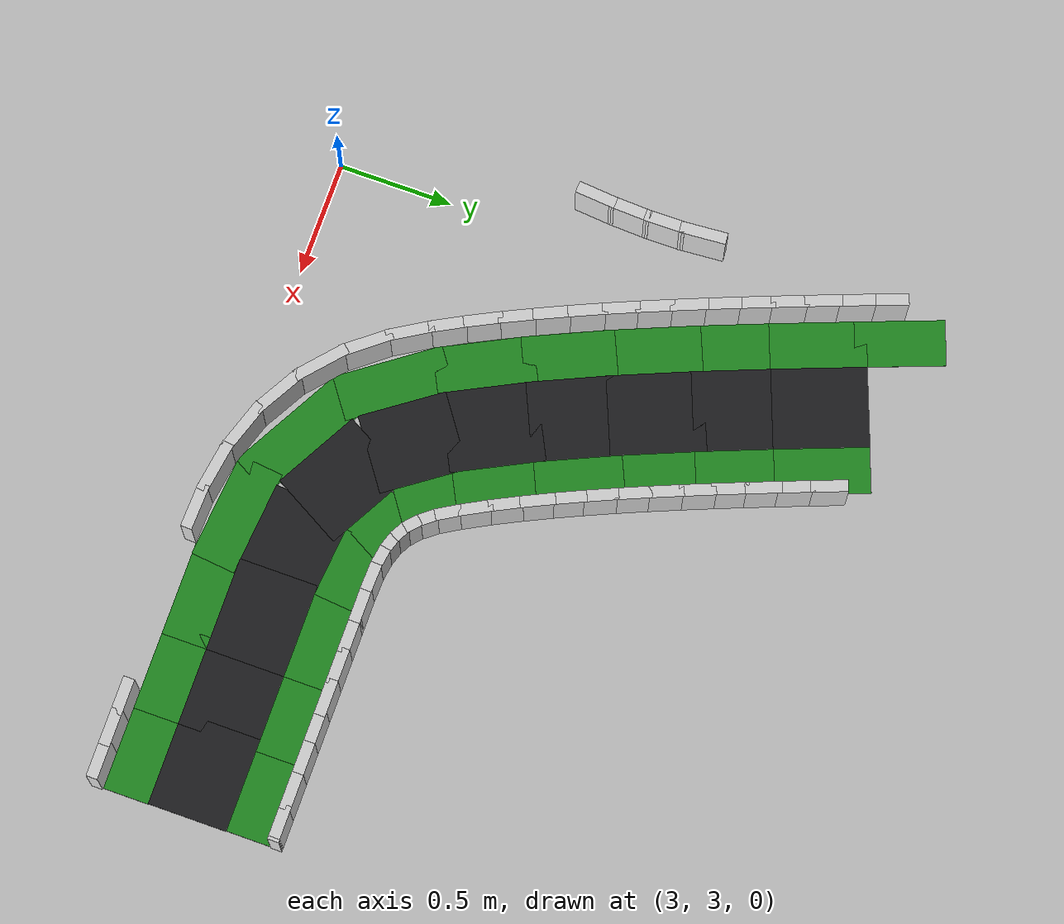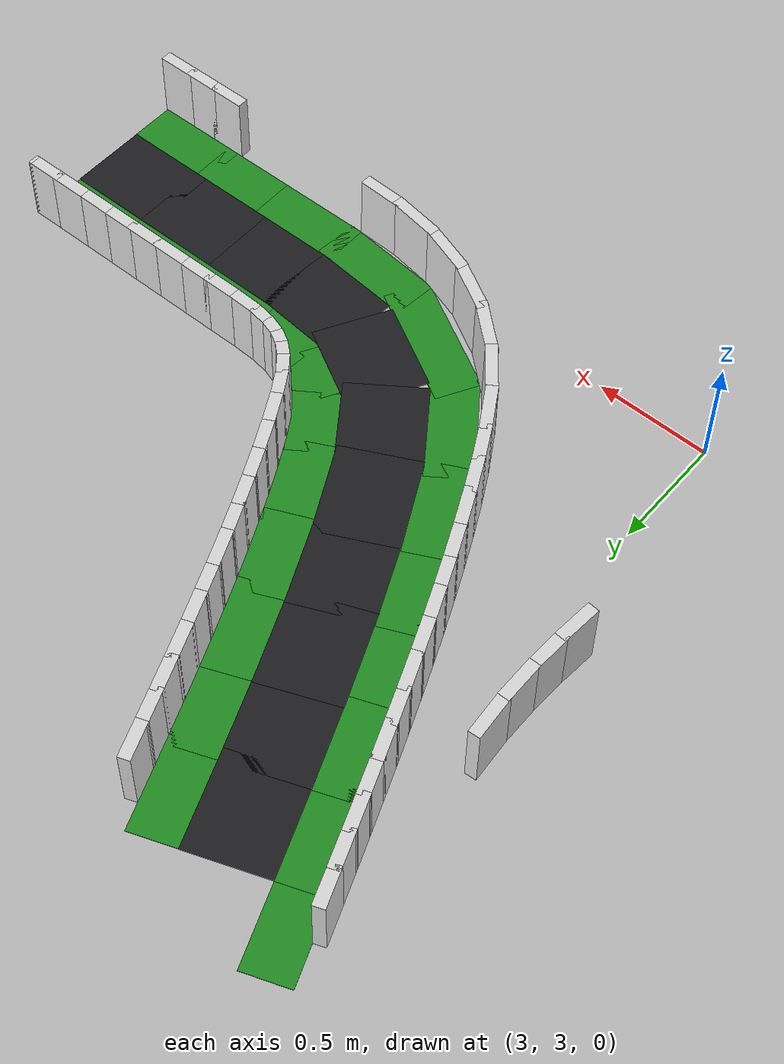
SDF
<sdf version="1.8">
 <world name="it_arena_track">
  <model name="it_arena_track_static">
   <static>true</static>
   <link name="surface_main_58">
    <pose>5.6658 3.3636 0.0015 0 0 -3.14130</pose>
    <collision name="surface_main_58_col">
     <geometry><box><size>0.4140 0.3500 0.0030</size></box></geometry>
    </collision>
    <visual name="surface_main_58_vis">
     <geometry><box><size>0.4140 0.3500 0.0030</size></box></geometry>
     <material><ambient>0.12 0.12 0.13 1</ambient><diffuse>0.12 0.12 0.13 1</diffuse></material>
    </visual>
   </link>
   <link name="surface_main_59">
    <pose>5.3159 3.3635 0.0015 0 0 3.14159</pose>
    <collision name="surface_main_59_col">
     <geometry><box><size>0.3910 0.3500 0.0030</size></box></geometry>
    </collision>
    <visual name="surface_main_59_vis">
     <geometry><box><size>0.3910 0.3500 0.0030</size></box></geometry>
     <material><ambient>0.12 0.12 0.13 1</ambient><diffuse>0.12 0.12 0.13 1</diffuse></material>
    </visual>
   </link>
   <link name="surface_main_60">
    <pose>4.9659 3.3635 0.0015 0 0 3.14159</pose>
    <collision name="surface_main_60_col">
     <geometry><box><size>0.4140 0.3500 0.0030</size></box></geometry>
    </collision>
    <visual name="surface_main_60_vis">
     <geometry><box><size>0.4140 0.3500 0.0030</size></box></geometry>
     <material><ambient>0.12 0.12 0.13 1</ambient><diffuse>0.12 0.12 0.13 1</diffuse></material>
    </visual>
   </link>
   <link name="surface_main_61">
    <pose>4.6173 3.3794 0.0015 0 0 3.04737</pose>
    <collision name="surface_main_61_col">
     <geometry><box><size>0.3897 0.3500 0.0030</size></box></geometry>
    </collision>
    <visual name="surface_main_61_vis">
     <geometry><box><size>0.3897 0.3500 0.0030</size></box></geometry>
     <material><ambient>0.12 0.12 0.13 1</ambient><diffuse>0.12 0.12 0.13 1</diffuse></material>
    </visual>
   </link>
   <link name="surface_main_62">
    <pose>4.2929 3.4817 0.0015 0 0 2.63517</pose>
    <collision name="surface_main_62_col">
     <geometry><box><size>0.4094 0.3500 0.0030</size></box></geometry>
    </collision>
    <visual name="surface_main_62_vis">
     <geometry><box><size>0.4094 0.3500 0.0030</size></box></geometry>
     <material><ambient>0.12 0.12 0.13 1</ambient><diffuse>0.12 0.12 0.13 1</diffuse></material>
    </visual>
   </link>
   <link name="surface_main_63">
    <pose>4.0390 3.7058 0.0015 0 0 2.19072</pose>
    <collision name="surface_main_63_col">
     <geometry><box><size>0.3893 0.3500 0.0030</size></box></geometry>
    </collision>
    <visual name="surface_main_63_vis">
     <geometry><box><size>0.3893 0.3500 0.0030</size></box></geometry>
     <material><ambient>0.12 0.12 0.13 1</ambient><diffuse>0.12 0.12 0.13 1</diffuse></material>
    </visual>
   </link>
   <link name="surface_main_64">
    <pose>3.8593 4.0041 0.0015 0 0 2.03985</pose>
    <collision name="surface_main_64_col">
     <geometry><box><size>0.4139 0.3500 0.0030</size></box></geometry>
    </collision>
    <visual name="surface_main_64_vis">
     <geometry><box><size>0.4139 0.3500 0.0030</size></box></geometry>
     <material><ambient>0.12 0.12 0.13 1</ambient><diffuse>0.12 0.12 0.13 1</diffuse></material>
    </visual>
   </link>
   <link name="surface_main_65">
    <pose>3.7082 4.3196 0.0015 0 0 1.99366</pose>
    <collision name="surface_main_65_col">
     <geometry><box><size>0.3909 0.3500 0.0030</size></box></geometry>
    </collision>
    <visual name="surface_main_65_vis">
     <geometry><box><size>0.3909 0.3500 0.0030</size></box></geometry>
     <material><ambient>0.12 0.12 0.13 1</ambient><diffuse>0.12 0.12 0.13 1</diffuse></material>
    </visual>
   </link>
   <link name="surface_main_66">
    <pose>3.5693 4.6408 0.0015 0 0 1.96489</pose>
    <collision name="surface_main_66_col">
     <geometry><box><size>0.4139 0.3500 0.0030</size></box></geometry>
    </collision>
    <visual name="surface_main_66_vis">
     <geometry><box><size>0.4139 0.3500 0.0030</size></box></geometry>
     <material><ambient>0.12 0.12 0.13 1</ambient><diffuse>0.12 0.12 0.13 1</diffuse></material>
    </visual>
   </link>
   <link name="surface_main_67">
    <pose>3.4380 4.9651 0.0015 0 0 1.94567</pose>
    <collision name="surface_main_67_col">
     <geometry><box><size>0.3910 0.3500 0.0030</size></box></geometry>
    </collision>
    <visual name="surface_main_67_vis">
     <geometry><box><size>0.3910 0.3500 0.0030</size></box></geometry>
     <material><ambient>0.12 0.12 0.13 1</ambient><diffuse>0.12 0.12 0.13 1</diffuse></material>
    </visual>
   </link>
   <link name="surface_main_68">
    <pose>3.3115 5.2914 0.0015 0 0 1.93557</pose>
    <collision name="surface_main_68_col">
     <geometry><box><size>0.4140 0.3500 0.0030</size></box></geometry>
    </collision>
    <visual name="surface_main_68_vis">
     <geometry><box><size>0.4140 0.3500 0.0030</size></box></geometry>
     <material><ambient>0.12 0.12 0.13 1</ambient><diffuse>0.12 0.12 0.13 1</diffuse></material>
    </visual>
   </link>
   <link name="grass_main_left_58">
    <pose>5.6669 3.0886 0.0010 0 0 -3.14128</pose>
    <collision name="grass_main_left_58_col">
     <geometry><box><size>0.4164 0.2000 0.0020</size></box></geometry>
    </collision>
    <visual name="grass_main_left_58_vis">
     <geometry><box><size>0.4164 0.2000 0.0020</size></box></geometry>
     <material><ambient>0.13 0.55 0.13 1</ambient><diffuse>0.13 0.55 0.13 1</diffuse></material>
    </visual>
   </link>
   <link name="grass_main_left_59">
    <pose>5.3159 3.0885 0.0010 0 0 3.14159</pose>
    <collision name="grass_main_left_59_col">
     <geometry><box><size>0.3910 0.2000 0.0020</size></box></geometry>
    </collision>
    <visual name="grass_main_left_59_vis">
     <geometry><box><size>0.3910 0.2000 0.0020</size></box></geometry>
     <material><ambient>0.13 0.55 0.13 1</ambient><diffuse>0.13 0.55 0.13 1</diffuse></material>
    </visual>
   </link>
   <link name="grass_main_left_60">
    <pose>4.9659 3.0885 0.0010 0 0 3.14159</pose>
    <collision name="grass_main_left_60_col">
     <geometry><box><size>0.4140 0.2000 0.0020</size></box></geometry>
    </collision>
    <visual name="grass_main_left_60_vis">
     <geometry><box><size>0.4140 0.2000 0.0020</size></box></geometry>
     <material><ambient>0.13 0.55 0.13 1</ambient><diffuse>0.13 0.55 0.13 1</diffuse></material>
    </visual>
   </link>
   <link name="grass_main_left_61">
    <pose>4.5826 3.1089 0.0010 0 0 3.04169</pose>
    <collision name="grass_main_left_61_col">
     <geometry><box><size>0.4700 0.2000 0.0020</size></box></geometry>
    </collision>
    <visual name="grass_main_left_61_vis">
     <geometry><box><size>0.4700 0.2000 0.0020</size></box></geometry>
     <material><ambient>0.13 0.55 0.13 1</ambient><diffuse>0.13 0.55 0.13 1</diffuse></material>
    </visual>
   </link>
   <link name="grass_main_left_62">
    <pose>4.1632 3.2494 0.0010 0 0 2.63433</pose>
    <collision name="grass_main_left_62_col">
     <geometry><box><size>0.5687 0.2000 0.0020</size></box></geometry>
    </collision>
    <visual name="grass_main_left_62_vis">
     <geometry><box><size>0.5687 0.2000 0.0020</size></box></geometry>
     <material><ambient>0.13 0.55 0.13 1</ambient><diffuse>0.13 0.55 0.13 1</diffuse></material>
    </visual>
   </link>
   <link name="grass_main_left_63">
    <pose>3.8230 3.5409 0.0010 0 0 2.19721</pose>
    <collision name="grass_main_left_63_col">
     <geometry><box><size>0.4866 0.2000 0.0020</size></box></geometry>
    </collision>
    <visual name="grass_main_left_63_vis">
     <geometry><box><size>0.4866 0.2000 0.0020</size></box></geometry>
     <material><ambient>0.13 0.55 0.13 1</ambient><diffuse>0.13 0.55 0.13 1</diffuse></material>
    </visual>
   </link>
   <link name="grass_main_left_64">
    <pose>3.6140 3.8800 0.0010 0 0 2.03982</pose>
    <collision name="grass_main_left_64_col">
     <geometry><box><size>0.4325 0.2000 0.0020</size></box></geometry>
    </collision>
    <visual name="grass_main_left_64_vis">
     <geometry><box><size>0.4325 0.2000 0.0020</size></box></geometry>
     <material><ambient>0.13 0.55 0.13 1</ambient><diffuse>0.13 0.55 0.13 1</diffuse></material>
    </visual>
   </link>
   <link name="grass_main_left_65">
    <pose>3.4572 4.2073 0.0010 0 0 1.99359</pose>
    <collision name="grass_main_left_65_col">
     <geometry><box><size>0.4025 0.2000 0.0020</size></box></geometry>
    </collision>
    <visual name="grass_main_left_65_vis">
     <geometry><box><size>0.4025 0.2000 0.0020</size></box></geometry>
     <material><ambient>0.13 0.55 0.13 1</ambient><diffuse>0.13 0.55 0.13 1</diffuse></material>
    </visual>
   </link>
   <link name="grass_main_left_66">
    <pose>3.3153 4.5355 0.0010 0 0 1.96487</pose>
    <collision name="grass_main_left_66_col">
     <geometry><box><size>0.4200 0.2000 0.0020</size></box></geometry>
    </collision>
    <visual name="grass_main_left_66_vis">
     <geometry><box><size>0.4200 0.2000 0.0020</size></box></geometry>
     <material><ambient>0.13 0.55 0.13 1</ambient><diffuse>0.13 0.55 0.13 1</diffuse></material>
    </visual>
   </link>
   <link name="grass_main_left_67">
    <pose>3.1823 4.8639 0.0010 0 0 1.94569</pose>
    <collision name="grass_main_left_67_col">
     <geometry><box><size>0.3950 0.2000 0.0020</size></box></geometry>
    </collision>
    <visual name="grass_main_left_67_vis">
     <geometry><box><size>0.3950 0.2000 0.0020</size></box></geometry>
     <material><ambient>0.13 0.55 0.13 1</ambient><diffuse>0.13 0.55 0.13 1</diffuse></material>
    </visual>
   </link>
   <link name="grass_main_left_68">
    <pose>3.0547 5.1931 0.0010 0 0 1.93557</pose>
    <collision name="grass_main_left_68_col">
     <geometry><box><size>0.4171 0.2000 0.0020</size></box></geometry>
    </collision>
    <visual name="grass_main_left_68_vis">
     <geometry><box><size>0.4171 0.2000 0.0020</size></box></geometry>
     <material><ambient>0.13 0.55 0.13 1</ambient><diffuse>0.13 0.55 0.13 1</diffuse></material>
    </visual>
   </link>
   <link name="grass_main_left_69">
    <pose>2.9301 5.5214 0.0010 0 0 1.93135</pose>
    <collision name="grass_main_left_69_col">
     <geometry><box><size>0.3905 0.2000 0.0020</size></box></geometry>
    </collision>
    <visual name="grass_main_left_69_vis">
     <geometry><box><size>0.3905 0.2000 0.0020</size></box></geometry>
     <material><ambient>0.13 0.55 0.13 1</ambient><diffuse>0.13 0.55 0.13 1</diffuse></material>
    </visual>
   </link>
   <link name="grass_main_right_52">
    <pose>5.6648 3.6385 0.0010 0 0 -3.14132</pose>
    <collision name="grass_main_right_52_col">
     <geometry><box><size>0.4115 0.2000 0.0020</size></box></geometry>
    </collision>
    <visual name="grass_main_right_52_vis">
     <geometry><box><size>0.4115 0.2000 0.0020</size></box></geometry>
     <material><ambient>0.13 0.55 0.13 1</ambient><diffuse>0.13 0.55 0.13 1</diffuse></material>
    </visual>
   </link>
   <link name="grass_main_right_53">
    <pose>5.3159 3.6385 0.0010 0 0 3.14159</pose>
    <collision name="grass_main_right_53_col">
     <geometry><box><size>0.3910 0.2000 0.0020</size></box></geometry>
    </collision>
    <visual name="grass_main_right_53_vis">
     <geometry><box><size>0.3910 0.2000 0.0020</size></box></geometry>
     <material><ambient>0.13 0.55 0.13 1</ambient><diffuse>0.13 0.55 0.13 1</diffuse></material>
    </visual>
   </link>
   <link name="grass_main_right_54">
    <pose>4.9659 3.6385 0.0010 0 0 3.14159</pose>
    <collision name="grass_main_right_54_col">
     <geometry><box><size>0.4140 0.2000 0.0020</size></box></geometry>
    </collision>
    <visual name="grass_main_right_54_vis">
     <geometry><box><size>0.4140 0.2000 0.0020</size></box></geometry>
     <material><ambient>0.13 0.55 0.13 1</ambient><diffuse>0.13 0.55 0.13 1</diffuse></material>
    </visual>
   </link>
   <link name="grass_main_right_55">
    <pose>4.6519 3.6500 0.0010 0 0 3.05599</pose>
    <collision name="grass_main_right_55_col">
     <geometry><box><size>0.3093 0.2000 0.0020</size></box></geometry>
    </collision>
    <visual name="grass_main_right_55_vis">
     <geometry><box><size>0.3093 0.2000 0.0020</size></box></geometry>
     <material><ambient>0.13 0.55 0.13 1</ambient><diffuse>0.13 0.55 0.13 1</diffuse></material>
    </visual>
   </link>
   <link name="grass_main_right_56">
    <pose>4.4227 3.7141 0.0010 0 0 2.63709</pose>
    <collision name="grass_main_right_56_col">
     <geometry><box><size>0.2501 0.2000 0.0020</size></box></geometry>
    </collision>
    <visual name="grass_main_right_56_vis">
     <geometry><box><size>0.2501 0.2000 0.0020</size></box></geometry>
     <material><ambient>0.13 0.55 0.13 1</ambient><diffuse>0.13 0.55 0.13 1</diffuse></material>
    </visual>
   </link>
   <link name="grass_main_right_57">
    <pose>4.2549 3.8708 0.0010 0 0 2.17992</pose>
    <collision name="grass_main_right_57_col">
     <geometry><box><size>0.2921 0.2000 0.0020</size></box></geometry>
    </collision>
    <visual name="grass_main_right_57_vis">
     <geometry><box><size>0.2921 0.2000 0.0020</size></box></geometry>
     <material><ambient>0.13 0.55 0.13 1</ambient><diffuse>0.13 0.55 0.13 1</diffuse></material>
    </visual>
   </link>
   <link name="grass_main_right_58">
    <pose>4.1045 4.1282 0.0010 0 0 2.03988</pose>
    <collision name="grass_main_right_58_col">
     <geometry><box><size>0.3953 0.2000 0.0020</size></box></geometry>
    </collision>
    <visual name="grass_main_right_58_vis">
     <geometry><box><size>0.3953 0.2000 0.0020</size></box></geometry>
     <material><ambient>0.13 0.55 0.13 1</ambient><diffuse>0.13 0.55 0.13 1</diffuse></material>
    </visual>
   </link>
   <link name="grass_main_right_59">
    <pose>3.9592 4.4319 0.0010 0 0 1.99372</pose>
    <collision name="grass_main_right_59_col">
     <geometry><box><size>0.3793 0.2000 0.0020</size></box></geometry>
    </collision>
    <visual name="grass_main_right_59_vis">
     <geometry><box><size>0.3793 0.2000 0.0020</size></box></geometry>
     <material><ambient>0.13 0.55 0.13 1</ambient><diffuse>0.13 0.55 0.13 1</diffuse></material>
    </visual>
   </link>
   <link name="grass_main_right_60">
    <pose>3.8234 4.7460 0.0010 0 0 1.96491</pose>
    <collision name="grass_main_right_60_col">
     <geometry><box><size>0.4079 0.2000 0.0020</size></box></geometry>
    </collision>
    <visual name="grass_main_right_60_vis">
     <geometry><box><size>0.4079 0.2000 0.0020</size></box></geometry>
     <material><ambient>0.13 0.55 0.13 1</ambient><diffuse>0.13 0.55 0.13 1</diffuse></material>
    </visual>
   </link>
   <link name="grass_main_right_61">
    <pose>3.6937 5.0663 0.0010 0 0 1.94565</pose>
    <collision name="grass_main_right_61_col">
     <geometry><box><size>0.3869 0.2000 0.0020</size></box></geometry>
    </collision>
    <visual name="grass_main_right_61_vis">
     <geometry><box><size>0.3869 0.2000 0.0020</size></box></geometry>
     <material><ambient>0.13 0.55 0.13 1</ambient><diffuse>0.13 0.55 0.13 1</diffuse></material>
    </visual>
   </link>
   <link name="grass_main_right_62">
    <pose>3.5684 5.3897 0.0010 0 0 1.93556</pose>
    <collision name="grass_main_right_62_col">
     <geometry><box><size>0.4108 0.2000 0.0020</size></box></geometry>
    </collision>
    <visual name="grass_main_right_62_vis">
     <geometry><box><size>0.4108 0.2000 0.0020</size></box></geometry>
     <material><ambient>0.13 0.55 0.13 1</ambient><diffuse>0.13 0.55 0.13 1</diffuse></material>
    </visual>
   </link>
   <link name="walls_main_left_145">
    <pose>5.7980 2.9637 0.1500 0 0 -3.13931</pose>
    <collision name="walls_main_left_145_col">
     <geometry><box><size>0.1660 0.0500 0.3000</size></box></geometry>
     <surface><friction><ode><mu>0.8</mu><mu2>0.8</mu2></ode></friction></surface>
    </collision>
    <visual name="walls_main_left_145_vis">
     <geometry><box><size>0.1660 0.0500 0.3000</size></box></geometry>
     <material><ambient>0.85 0.85 0.85 1</ambient><diffuse>0.85 0.85 0.85 1</diffuse></material>
    </visual>
   </link>
   <link name="walls_main_left_146">
    <pose>5.6558 2.9635 0.1500 0 0 3.14159</pose>
    <collision name="walls_main_left_146_col">
     <geometry><box><size>0.1610 0.0500 0.3000</size></box></geometry>
     <surface><friction><ode><mu>0.8</mu><mu2>0.8</mu2></ode></friction></surface>
    </collision>
    <visual name="walls_main_left_146_vis">
     <geometry><box><size>0.1610 0.0500 0.3000</size></box></geometry>
     <material><ambient>0.85 0.85 0.85 1</ambient><diffuse>0.85 0.85 0.85 1</diffuse></material>
    </visual>
   </link>
   <link name="walls_main_left_147">
    <pose>5.5158 2.9635 0.1500 0 0 3.14159</pose>
    <collision name="walls_main_left_147_col">
     <geometry><box><size>0.1610 0.0500 0.3000</size></box></geometry>
     <surface><friction><ode><mu>0.8</mu><mu2>0.8</mu2></ode></friction></surface>
    </collision>
    <visual name="walls_main_left_147_vis">
     <geometry><box><size>0.1610 0.0500 0.3000</size></box></geometry>
     <material><ambient>0.85 0.85 0.85 1</ambient><diffuse>0.85 0.85 0.85 1</diffuse></material>
    </visual>
   </link>
   <link name="walls_main_left_153">
    <pose>4.6584 2.9668 0.1500 0 0 3.10350</pose>
    <collision name="walls_main_left_153_col">
     <geometry><box><size>0.1996 0.0500 0.3000</size></box></geometry>
     <surface><friction><ode><mu>0.8</mu><mu2>0.8</mu2></ode></friction></surface>
    </collision>
    <visual name="walls_main_left_153_vis">
     <geometry><box><size>0.1996 0.0500 0.3000</size></box></geometry>
     <material><ambient>0.85 0.85 0.85 1</ambient><diffuse>0.85 0.85 0.85 1</diffuse></material>
    </visual>
   </link>
   <link name="walls_main_left_154">
    <pose>4.4724 2.9861 0.1500 0 0 2.98218</pose>
    <collision name="walls_main_left_154_col">
     <geometry><box><size>0.2312 0.0500 0.3000</size></box></geometry>
     <surface><friction><ode><mu>0.8</mu><mu2>0.8</mu2></ode></friction></surface>
    </collision>
    <visual name="walls_main_left_154_vis">
     <geometry><box><size>0.2312 0.0500 0.3000</size></box></geometry>
     <material><ambient>0.85 0.85 0.85 1</ambient><diffuse>0.85 0.85 0.85 1</diffuse></material>
    </visual>
   </link>
   <link name="walls_main_left_155">
    <pose>4.2725 3.0359 0.1500 0 0 2.81680</pose>
    <collision name="walls_main_left_155_col">
     <geometry><box><size>0.2444 0.0500 0.3000</size></box></geometry>
     <surface><friction><ode><mu>0.8</mu><mu2>0.8</mu2></ode></friction></surface>
    </collision>
    <visual name="walls_main_left_155_vis">
     <geometry><box><size>0.2444 0.0500 0.3000</size></box></geometry>
     <material><ambient>0.85 0.85 0.85 1</ambient><diffuse>0.85 0.85 0.85 1</diffuse></material>
    </visual>
   </link>
   <link name="walls_main_left_156">
    <pose>4.0764 3.1245 0.1500 0 0 2.62185</pose>
    <collision name="walls_main_left_156_col">
     <geometry><box><size>0.2529 0.0500 0.3000</size></box></geometry>
     <surface><friction><ode><mu>0.8</mu><mu2>0.8</mu2></ode></friction></surface>
    </collision>
    <visual name="walls_main_left_156_vis">
     <geometry><box><size>0.2529 0.0500 0.3000</size></box></geometry>
     <material><ambient>0.85 0.85 0.85 1</ambient><diffuse>0.85 0.85 0.85 1</diffuse></material>
    </visual>
   </link>
   <link name="walls_main_left_157">
    <pose>3.8998 3.2504 0.1500 0 0 2.41985</pose>
    <collision name="walls_main_left_157_col">
     <geometry><box><size>0.2484 0.0500 0.3000</size></box></geometry>
     <surface><friction><ode><mu>0.8</mu><mu2>0.8</mu2></ode></friction></surface>
    </collision>
    <visual name="walls_main_left_157_vis">
     <geometry><box><size>0.2484 0.0500 0.3000</size></box></geometry>
     <material><ambient>0.85 0.85 0.85 1</ambient><diffuse>0.85 0.85 0.85 1</diffuse></material>
    </visual>
   </link>
   <link name="walls_main_left_158">
    <pose>3.7558 3.4008 0.1500 0 0 2.24401</pose>
    <collision name="walls_main_left_158_col">
     <geometry><box><size>0.2323 0.0500 0.3000</size></box></geometry>
     <surface><friction><ode><mu>0.8</mu><mu2>0.8</mu2></ode></friction></surface>
    </collision>
    <visual name="walls_main_left_158_vis">
     <geometry><box><size>0.2323 0.0500 0.3000</size></box></geometry>
     <material><ambient>0.85 0.85 0.85 1</ambient><diffuse>0.85 0.85 0.85 1</diffuse></material>
    </visual>
   </link>
   <link name="walls_main_left_159">
    <pose>3.6459 3.5572 0.1500 0 0 2.11555</pose>
    <collision name="walls_main_left_159_col">
     <geometry><box><size>0.2083 0.0500 0.3000</size></box></geometry>
     <surface><friction><ode><mu>0.8</mu><mu2>0.8</mu2></ode></friction></surface>
    </collision>
    <visual name="walls_main_left_159_vis">
     <geometry><box><size>0.2083 0.0500 0.3000</size></box></geometry>
     <material><ambient>0.85 0.85 0.85 1</ambient><diffuse>0.85 0.85 0.85 1</diffuse></material>
    </visual>
   </link>
   <link name="walls_main_left_160">
    <pose>3.5636 3.7004 0.1500 0 0 2.06436</pose>
    <collision name="walls_main_left_160_col">
     <geometry><box><size>0.1717 0.0500 0.3000</size></box></geometry>
     <surface><friction><ode><mu>0.8</mu><mu2>0.8</mu2></ode></friction></surface>
    </collision>
    <visual name="walls_main_left_160_vis">
     <geometry><box><size>0.1717 0.0500 0.3000</size></box></geometry>
     <material><ambient>0.85 0.85 0.85 1</ambient><diffuse>0.85 0.85 0.85 1</diffuse></material>
    </visual>
   </link>
   <link name="walls_main_left_161">
    <pose>3.4953 3.8318 0.1500 0 0 2.03517</pose>
    <collision name="walls_main_left_161_col">
     <geometry><box><size>0.1691 0.0500 0.3000</size></box></geometry>
     <surface><friction><ode><mu>0.8</mu><mu2>0.8</mu2></ode></friction></surface>
    </collision>
    <visual name="walls_main_left_161_vis">
     <geometry><box><size>0.1691 0.0500 0.3000</size></box></geometry>
     <material><ambient>0.85 0.85 0.85 1</ambient><diffuse>0.85 0.85 0.85 1</diffuse></material>
    </visual>
   </link>
   <link name="walls_main_left_162">
    <pose>3.4306 3.9643 0.1500 0 0 2.01543</pose>
    <collision name="walls_main_left_162_col">
     <geometry><box><size>0.1700 0.0500 0.3000</size></box></geometry>
     <surface><friction><ode><mu>0.8</mu><mu2>0.8</mu2></ode></friction></surface>
    </collision>
    <visual name="walls_main_left_162_vis">
     <geometry><box><size>0.1700 0.0500 0.3000</size></box></geometry>
     <material><ambient>0.85 0.85 0.85 1</ambient><diffuse>0.85 0.85 0.85 1</diffuse></material>
    </visual>
   </link>
   <link name="walls_main_left_163">
    <pose>3.3680 4.0984 0.1500 0 0 1.99961</pose>
    <collision name="walls_main_left_163_col">
     <geometry><box><size>0.1703 0.0500 0.3000</size></box></geometry>
     <surface><friction><ode><mu>0.8</mu><mu2>0.8</mu2></ode></friction></surface>
    </collision>
    <visual name="walls_main_left_163_vis">
     <geometry><box><size>0.1703 0.0500 0.3000</size></box></geometry>
     <material><ambient>0.85 0.85 0.85 1</ambient><diffuse>0.85 0.85 0.85 1</diffuse></material>
    </visual>
   </link>
   <link name="walls_main_left_164">
    <pose>3.3078 4.2325 0.1500 0 0 1.98585</pose>
    <collision name="walls_main_left_164_col">
     <geometry><box><size>0.1679 0.0500 0.3000</size></box></geometry>
     <surface><friction><ode><mu>0.8</mu><mu2>0.8</mu2></ode></friction></surface>
    </collision>
    <visual name="walls_main_left_164_vis">
     <geometry><box><size>0.1679 0.0500 0.3000</size></box></geometry>
     <material><ambient>0.85 0.85 0.85 1</ambient><diffuse>0.85 0.85 0.85 1</diffuse></material>
    </visual>
   </link>
   <link name="walls_main_left_165">
    <pose>3.2508 4.3641 0.1500 0 0 1.97253</pose>
    <collision name="walls_main_left_165_col">
     <geometry><box><size>0.1618 0.0500 0.3000</size></box></geometry>
     <surface><friction><ode><mu>0.8</mu><mu2>0.8</mu2></ode></friction></surface>
    </collision>
    <visual name="walls_main_left_165_vis">
     <geometry><box><size>0.1618 0.0500 0.3000</size></box></geometry>
     <material><ambient>0.85 0.85 0.85 1</ambient><diffuse>0.85 0.85 0.85 1</diffuse></material>
    </visual>
   </link>
   <link name="walls_main_left_166">
    <pose>3.1956 4.4958 0.1500 0 0 1.96299</pose>
    <collision name="walls_main_left_166_col">
     <geometry><box><size>0.1667 0.0500 0.3000</size></box></geometry>
     <surface><friction><ode><mu>0.8</mu><mu2>0.8</mu2></ode></friction></surface>
    </collision>
    <visual name="walls_main_left_166_vis">
     <geometry><box><size>0.1667 0.0500 0.3000</size></box></geometry>
     <material><ambient>0.85 0.85 0.85 1</ambient><diffuse>0.85 0.85 0.85 1</diffuse></material>
    </visual>
   </link>
   <link name="walls_main_left_167">
    <pose>3.1408 4.6296 0.1500 0 0 1.95608</pose>
    <collision name="walls_main_left_167_col">
     <geometry><box><size>0.1659 0.0500 0.3000</size></box></geometry>
     <surface><friction><ode><mu>0.8</mu><mu2>0.8</mu2></ode></friction></surface>
    </collision>
    <visual name="walls_main_left_167_vis">
     <geometry><box><size>0.1659 0.0500 0.3000</size></box></geometry>
     <material><ambient>0.85 0.85 0.85 1</ambient><diffuse>0.85 0.85 0.85 1</diffuse></material>
    </visual>
   </link>
   <link name="walls_main_left_168">
    <pose>3.0878 4.7617 0.1500 0 0 1.94866</pose>
    <collision name="walls_main_left_168_col">
     <geometry><box><size>0.1616 0.0500 0.3000</size></box></geometry>
     <surface><friction><ode><mu>0.8</mu><mu2>0.8</mu2></ode></friction></surface>
    </collision>
    <visual name="walls_main_left_168_vis">
     <geometry><box><size>0.1616 0.0500 0.3000</size></box></geometry>
     <material><ambient>0.85 0.85 0.85 1</ambient><diffuse>0.85 0.85 0.85 1</diffuse></material>
    </visual>
   </link>
   <link name="walls_main_left_169">
    <pose>3.0360 4.8934 0.1500 0 0 1.94224</pose>
    <collision name="walls_main_left_169_col">
     <geometry><box><size>0.1639 0.0500 0.3000</size></box></geometry>
     <surface><friction><ode><mu>0.8</mu><mu2>0.8</mu2></ode></friction></surface>
    </collision>
    <visual name="walls_main_left_169_vis">
     <geometry><box><size>0.1639 0.0500 0.3000</size></box></geometry>
     <material><ambient>0.85 0.85 0.85 1</ambient><diffuse>0.85 0.85 0.85 1</diffuse></material>
    </visual>
   </link>
   <link name="walls_main_left_170">
    <pose>2.9845 5.0263 0.1500 0 0 1.93899</pose>
    <collision name="walls_main_left_170_col">
     <geometry><box><size>0.1637 0.0500 0.3000</size></box></geometry>
     <surface><friction><ode><mu>0.8</mu><mu2>0.8</mu2></ode></friction></surface>
    </collision>
    <visual name="walls_main_left_170_vis">
     <geometry><box><size>0.1637 0.0500 0.3000</size></box></geometry>
     <material><ambient>0.85 0.85 0.85 1</ambient><diffuse>0.85 0.85 0.85 1</diffuse></material>
    </visual>
   </link>
   <link name="walls_main_left_171">
    <pose>2.9339 5.1581 0.1500 0 0 1.93561</pose>
    <collision name="walls_main_left_171_col">
     <geometry><box><size>0.1611 0.0500 0.3000</size></box></geometry>
     <surface><friction><ode><mu>0.8</mu><mu2>0.8</mu2></ode></friction></surface>
    </collision>
    <visual name="walls_main_left_171_vis">
     <geometry><box><size>0.1611 0.0500 0.3000</size></box></geometry>
     <material><ambient>0.85 0.85 0.85 1</ambient><diffuse>0.85 0.85 0.85 1</diffuse></material>
    </visual>
   </link>
   <link name="walls_main_left_172">
    <pose>2.8840 5.2895 0.1500 0 0 1.93199</pose>
    <collision name="walls_main_left_172_col">
     <geometry><box><size>0.1622 0.0500 0.3000</size></box></geometry>
     <surface><friction><ode><mu>0.8</mu><mu2>0.8</mu2></ode></friction></surface>
    </collision>
    <visual name="walls_main_left_172_vis">
     <geometry><box><size>0.1622 0.0500 0.3000</size></box></geometry>
     <material><ambient>0.85 0.85 0.85 1</ambient><diffuse>0.85 0.85 0.85 1</diffuse></material>
    </visual>
   </link>
   <link name="walls_main_left_173">
    <pose>2.8342 5.4213 0.1500 0 0 1.93132</pose>
    <collision name="walls_main_left_173_col">
     <geometry><box><size>0.1618 0.0500 0.3000</size></box></geometry>
     <surface><friction><ode><mu>0.8</mu><mu2>0.8</mu2></ode></friction></surface>
    </collision>
    <visual name="walls_main_left_173_vis">
     <geometry><box><size>0.1618 0.0500 0.3000</size></box></geometry>
     <material><ambient>0.85 0.85 0.85 1</ambient><diffuse>0.85 0.85 0.85 1</diffuse></material>
    </visual>
   </link>
   <link name="walls_main_left_219">
    <pose>2.8254 4.5832 0.1500 0 0 -1.49450</pose>
    <collision name="walls_main_left_219_col">
     <geometry><box><size>0.2041 0.0500 0.3000</size></box></geometry>
     <surface><friction><ode><mu>0.8</mu><mu2>0.8</mu2></ode></friction></surface>
    </collision>
    <visual name="walls_main_left_219_vis">
     <geometry><box><size>0.2041 0.0500 0.3000</size></box></geometry>
     <material><ambient>0.85 0.85 0.85 1</ambient><diffuse>0.85 0.85 0.85 1</diffuse></material>
    </visual>
   </link>
   <link name="walls_main_left_220">
    <pose>2.8330 4.4155 0.1500 0 0 -1.56080</pose>
    <collision name="walls_main_left_220_col">
     <geometry><box><size>0.1820 0.0500 0.3000</size></box></geometry>
     <surface><friction><ode><mu>0.8</mu><mu2>0.8</mu2></ode></friction></surface>
    </collision>
    <visual name="walls_main_left_220_vis">
     <geometry><box><size>0.1820 0.0500 0.3000</size></box></geometry>
     <material><ambient>0.85 0.85 0.85 1</ambient><diffuse>0.85 0.85 0.85 1</diffuse></material>
    </visual>
   </link>
   <link name="walls_main_left_221">
    <pose>2.8308 4.2574 0.1500 0 0 -1.60870</pose>
    <collision name="walls_main_left_221_col">
     <geometry><box><size>0.1818 0.0500 0.3000</size></box></geometry>
     <surface><friction><ode><mu>0.8</mu><mu2>0.8</mu2></ode></friction></surface>
    </collision>
    <visual name="walls_main_left_221_vis">
     <geometry><box><size>0.1818 0.0500 0.3000</size></box></geometry>
     <material><ambient>0.85 0.85 0.85 1</ambient><diffuse>0.85 0.85 0.85 1</diffuse></material>
    </visual>
   </link>
   <link name="walls_main_left_222">
    <pose>2.8217 4.1016 0.1500 0 0 -1.65031</pose>
    <collision name="walls_main_left_222_col">
     <geometry><box><size>0.1772 0.0500 0.3000</size></box></geometry>
     <surface><friction><ode><mu>0.8</mu><mu2>0.8</mu2></ode></friction></surface>
    </collision>
    <visual name="walls_main_left_222_vis">
     <geometry><box><size>0.1772 0.0500 0.3000</size></box></geometry>
     <material><ambient>0.85 0.85 0.85 1</ambient><diffuse>0.85 0.85 0.85 1</diffuse></material>
    </visual>
   </link>
   <link name="walls_main_right_129">
    <pose>5.8676 3.7637 0.1500 0 0 3.13327</pose>
    <collision name="walls_main_right_129_col">
     <geometry><box><size>0.0143 0.0500 0.3000</size></box></geometry>
     <surface><friction><ode><mu>0.8</mu><mu2>0.8</mu2></ode></friction></surface>
    </collision>
    <visual name="walls_main_right_129_vis">
     <geometry><box><size>0.0143 0.0500 0.3000</size></box></geometry>
     <material><ambient>0.85 0.85 0.85 1</ambient><diffuse>0.85 0.85 0.85 1</diffuse></material>
    </visual>
   </link>
   <link name="walls_main_right_130">
    <pose>5.7936 3.7636 0.1500 0 0 -3.13952</pose>
    <collision name="walls_main_right_130_col">
     <geometry><box><size>0.1559 0.0500 0.3000</size></box></geometry>
     <surface><friction><ode><mu>0.8</mu><mu2>0.8</mu2></ode></friction></surface>
    </collision>
    <visual name="walls_main_right_130_vis">
     <geometry><box><size>0.1559 0.0500 0.3000</size></box></geometry>
     <material><ambient>0.85 0.85 0.85 1</ambient><diffuse>0.85 0.85 0.85 1</diffuse></material>
    </visual>
   </link>
   <link name="walls_main_right_131">
    <pose>5.6558 3.7635 0.1500 0 0 3.14159</pose>
    <collision name="walls_main_right_131_col">
     <geometry><box><size>0.1610 0.0500 0.3000</size></box></geometry>
     <surface><friction><ode><mu>0.8</mu><mu2>0.8</mu2></ode></friction></surface>
    </collision>
    <visual name="walls_main_right_131_vis">
     <geometry><box><size>0.1610 0.0500 0.3000</size></box></geometry>
     <material><ambient>0.85 0.85 0.85 1</ambient><diffuse>0.85 0.85 0.85 1</diffuse></material>
    </visual>
   </link>
   <link name="walls_main_right_132">
    <pose>5.5158 3.7635 0.1500 0 0 3.14159</pose>
    <collision name="walls_main_right_132_col">
     <geometry><box><size>0.1610 0.0500 0.3000</size></box></geometry>
     <surface><friction><ode><mu>0.8</mu><mu2>0.8</mu2></ode></friction></surface>
    </collision>
    <visual name="walls_main_right_132_vis">
     <geometry><box><size>0.1610 0.0500 0.3000</size></box></geometry>
     <material><ambient>0.85 0.85 0.85 1</ambient><diffuse>0.85 0.85 0.85 1</diffuse></material>
    </visual>
   </link>
   <link name="walls_main_right_133">
    <pose>5.3759 3.7635 0.1500 0 0 3.14159</pose>
    <collision name="walls_main_right_133_col">
     <geometry><box><size>0.1610 0.0500 0.3000</size></box></geometry>
     <surface><friction><ode><mu>0.8</mu><mu2>0.8</mu2></ode></friction></surface>
    </collision>
    <visual name="walls_main_right_133_vis">
     <geometry><box><size>0.1610 0.0500 0.3000</size></box></geometry>
     <material><ambient>0.85 0.85 0.85 1</ambient><diffuse>0.85 0.85 0.85 1</diffuse></material>
    </visual>
   </link>
   <link name="walls_main_right_134">
    <pose>5.2359 3.7635 0.1500 0 0 3.14159</pose>
    <collision name="walls_main_right_134_col">
     <geometry><box><size>0.1610 0.0500 0.3000</size></box></geometry>
     <surface><friction><ode><mu>0.8</mu><mu2>0.8</mu2></ode></friction></surface>
    </collision>
    <visual name="walls_main_right_134_vis">
     <geometry><box><size>0.1610 0.0500 0.3000</size></box></geometry>
     <material><ambient>0.85 0.85 0.85 1</ambient><diffuse>0.85 0.85 0.85 1</diffuse></material>
    </visual>
   </link>
   <link name="walls_main_right_135">
    <pose>5.0959 3.7635 0.1500 0 0 3.14159</pose>
    <collision name="walls_main_right_135_col">
     <geometry><box><size>0.1610 0.0500 0.3000</size></box></geometry>
     <surface><friction><ode><mu>0.8</mu><mu2>0.8</mu2></ode></friction></surface>
    </collision>
    <visual name="walls_main_right_135_vis">
     <geometry><box><size>0.1610 0.0500 0.3000</size></box></geometry>
     <material><ambient>0.85 0.85 0.85 1</ambient><diffuse>0.85 0.85 0.85 1</diffuse></material>
    </visual>
   </link>
   <link name="walls_main_right_136">
    <pose>4.9559 3.7635 0.1500 0 0 3.14159</pose>
    <collision name="walls_main_right_136_col">
     <geometry><box><size>0.1610 0.0500 0.3000</size></box></geometry>
     <surface><friction><ode><mu>0.8</mu><mu2>0.8</mu2></ode></friction></surface>
    </collision>
    <visual name="walls_main_right_136_vis">
     <geometry><box><size>0.1610 0.0500 0.3000</size></box></geometry>
     <material><ambient>0.85 0.85 0.85 1</ambient><diffuse>0.85 0.85 0.85 1</diffuse></material>
    </visual>
   </link>
   <link name="walls_main_right_137">
    <pose>4.8163 3.7635 0.1500 0 0 -3.14159</pose>
    <collision name="walls_main_right_137_col">
     <geometry><box><size>0.1601 0.0500 0.3000</size></box></geometry>
     <surface><friction><ode><mu>0.8</mu><mu2>0.8</mu2></ode></friction></surface>
    </collision>
    <visual name="walls_main_right_137_vis">
     <geometry><box><size>0.1601 0.0500 0.3000</size></box></geometry>
     <material><ambient>0.85 0.85 0.85 1</ambient><diffuse>0.85 0.85 0.85 1</diffuse></material>
    </visual>
   </link>
   <link name="walls_main_right_138">
    <pose>4.6936 3.7653 0.1500 0 0 3.10725</pose>
    <collision name="walls_main_right_138_col">
     <geometry><box><size>0.1222 0.0500 0.3000</size></box></geometry>
     <surface><friction><ode><mu>0.8</mu><mu2>0.8</mu2></ode></friction></surface>
    </collision>
    <visual name="walls_main_right_138_vis">
     <geometry><box><size>0.1222 0.0500 0.3000</size></box></geometry>
     <material><ambient>0.85 0.85 0.85 1</ambient><diffuse>0.85 0.85 0.85 1</diffuse></material>
    </visual>
   </link>
   <link name="walls_main_right_139">
    <pose>4.6017 3.7732 0.1500 0 0 2.98737</pose>
    <collision name="walls_main_right_139_col">
     <geometry><box><size>0.0904 0.0500 0.3000</size></box></geometry>
     <surface><friction><ode><mu>0.8</mu><mu2>0.8</mu2></ode></friction></surface>
    </collision>
    <visual name="walls_main_right_139_vis">
     <geometry><box><size>0.0904 0.0500 0.3000</size></box></geometry>
     <material><ambient>0.85 0.85 0.85 1</ambient><diffuse>0.85 0.85 0.85 1</diffuse></material>
    </visual>
   </link>
   <link name="walls_main_right_140">
    <pose>4.5310 3.7895 0.1500 0 0 2.82899</pose>
    <collision name="walls_main_right_140_col">
     <geometry><box><size>0.0771 0.0500 0.3000</size></box></geometry>
     <surface><friction><ode><mu>0.8</mu><mu2>0.8</mu2></ode></friction></surface>
    </collision>
    <visual name="walls_main_right_140_vis">
     <geometry><box><size>0.0771 0.0500 0.3000</size></box></geometry>
     <material><ambient>0.85 0.85 0.85 1</ambient><diffuse>0.85 0.85 0.85 1</diffuse></material>
    </visual>
   </link>
   <link name="walls_main_right_141">
    <pose>4.4732 3.8145 0.1500 0 0 2.62759</pose>
    <collision name="walls_main_right_141_col">
     <geometry><box><size>0.0685 0.0500 0.3000</size></box></geometry>
     <surface><friction><ode><mu>0.8</mu><mu2>0.8</mu2></ode></friction></surface>
    </collision>
    <visual name="walls_main_right_141_vis">
     <geometry><box><size>0.0685 0.0500 0.3000</size></box></geometry>
     <material><ambient>0.85 0.85 0.85 1</ambient><diffuse>0.85 0.85 0.85 1</diffuse></material>
    </visual>
   </link>
   <link name="walls_main_right_142">
    <pose>4.4236 3.8503 0.1500 0 0 2.41028</pose>
    <collision name="walls_main_right_142_col">
     <geometry><box><size>0.0730 0.0500 0.3000</size></box></geometry>
     <surface><friction><ode><mu>0.8</mu><mu2>0.8</mu2></ode></friction></surface>
    </collision>
    <visual name="walls_main_right_142_vis">
     <geometry><box><size>0.0730 0.0500 0.3000</size></box></geometry>
     <material><ambient>0.85 0.85 0.85 1</ambient><diffuse>0.85 0.85 0.85 1</diffuse></material>
    </visual>
   </link>
   <link name="walls_main_right_143">
    <pose>4.3761 3.9021 0.1500 0 0 2.23357</pose>
    <collision name="walls_main_right_143_col">
     <geometry><box><size>0.0892 0.0500 0.3000</size></box></geometry>
     <surface><friction><ode><mu>0.8</mu><mu2>0.8</mu2></ode></friction></surface>
    </collision>
    <visual name="walls_main_right_143_vis">
     <geometry><box><size>0.0892 0.0500 0.3000</size></box></geometry>
     <material><ambient>0.85 0.85 0.85 1</ambient><diffuse>0.85 0.85 0.85 1</diffuse></material>
    </visual>
   </link>
   <link name="walls_main_right_144">
    <pose>4.3268 3.9750 0.1500 0 0 2.11084</pose>
    <collision name="walls_main_right_144_col">
     <geometry><box><size>0.1136 0.0500 0.3000</size></box></geometry>
     <surface><friction><ode><mu>0.8</mu><mu2>0.8</mu2></ode></friction></surface>
    </collision>
    <visual name="walls_main_right_144_vis">
     <geometry><box><size>0.1136 0.0500 0.3000</size></box></geometry>
     <material><ambient>0.85 0.85 0.85 1</ambient><diffuse>0.85 0.85 0.85 1</diffuse></material>
    </visual>
   </link>
   <link name="walls_main_right_145">
    <pose>4.2704 4.0749 0.1500 0 0 2.06526</pose>
    <collision name="walls_main_right_145_col">
     <geometry><box><size>0.1503 0.0500 0.3000</size></box></geometry>
     <surface><friction><ode><mu>0.8</mu><mu2>0.8</mu2></ode></friction></surface>
    </collision>
    <visual name="walls_main_right_145_vis">
     <geometry><box><size>0.1503 0.0500 0.3000</size></box></geometry>
     <material><ambient>0.85 0.85 0.85 1</ambient><diffuse>0.85 0.85 0.85 1</diffuse></material>
    </visual>
   </link>
   <link name="walls_main_right_146">
    <pose>4.2097 4.1918 0.1500 0 0 2.03491</pose>
    <collision name="walls_main_right_146_col">
     <geometry><box><size>0.1529 0.0500 0.3000</size></box></geometry>
     <surface><friction><ode><mu>0.8</mu><mu2>0.8</mu2></ode></friction></surface>
    </collision>
    <visual name="walls_main_right_146_vis">
     <geometry><box><size>0.1529 0.0500 0.3000</size></box></geometry>
     <material><ambient>0.85 0.85 0.85 1</ambient><diffuse>0.85 0.85 0.85 1</diffuse></material>
    </visual>
   </link>
   <link name="walls_main_right_147">
    <pose>4.1515 4.3109 0.1500 0 0 2.01501</pose>
    <collision name="walls_main_right_147_col">
     <geometry><box><size>0.1520 0.0500 0.3000</size></box></geometry>
     <surface><friction><ode><mu>0.8</mu><mu2>0.8</mu2></ode></friction></surface>
    </collision>
    <visual name="walls_main_right_147_vis">
     <geometry><box><size>0.1520 0.0500 0.3000</size></box></geometry>
     <material><ambient>0.85 0.85 0.85 1</ambient><diffuse>0.85 0.85 0.85 1</diffuse></material>
    </visual>
   </link>
   <link name="walls_main_right_148">
    <pose>4.0957 4.4305 0.1500 0 0 1.99968</pose>
    <collision name="walls_main_right_148_col">
     <geometry><box><size>0.1516 0.0500 0.3000</size></box></geometry>
     <surface><friction><ode><mu>0.8</mu><mu2>0.8</mu2></ode></friction></surface>
    </collision>
    <visual name="walls_main_right_148_vis">
     <geometry><box><size>0.1516 0.0500 0.3000</size></box></geometry>
     <material><ambient>0.85 0.85 0.85 1</ambient><diffuse>0.85 0.85 0.85 1</diffuse></material>
    </visual>
   </link>
   <link name="walls_main_right_149">
    <pose>4.0413 4.5518 0.1500 0 0 1.98626</pose>
    <collision name="walls_main_right_149_col">
     <geometry><box><size>0.1541 0.0500 0.3000</size></box></geometry>
     <surface><friction><ode><mu>0.8</mu><mu2>0.8</mu2></ode></friction></surface>
    </collision>
    <visual name="walls_main_right_149_vis">
     <geometry><box><size>0.1541 0.0500 0.3000</size></box></geometry>
     <material><ambient>0.85 0.85 0.85 1</ambient><diffuse>0.85 0.85 0.85 1</diffuse></material>
    </visual>
   </link>
   <link name="walls_main_right_150">
    <pose>3.9870 4.6772 0.1500 0 0 1.97252</pose>
    <collision name="walls_main_right_150_col">
     <geometry><box><size>0.1602 0.0500 0.3000</size></box></geometry>
     <surface><friction><ode><mu>0.8</mu><mu2>0.8</mu2></ode></friction></surface>
    </collision>
    <visual name="walls_main_right_150_vis">
     <geometry><box><size>0.1602 0.0500 0.3000</size></box></geometry>
     <material><ambient>0.85 0.85 0.85 1</ambient><diffuse>0.85 0.85 0.85 1</diffuse></material>
    </visual>
   </link>
   <link name="walls_main_right_151">
    <pose>3.9340 4.8037 0.1500 0 0 1.96278</pose>
    <collision name="walls_main_right_151_col">
     <geometry><box><size>0.1553 0.0500 0.3000</size></box></geometry>
     <surface><friction><ode><mu>0.8</mu><mu2>0.8</mu2></ode></friction></surface>
    </collision>
    <visual name="walls_main_right_151_vis">
     <geometry><box><size>0.1553 0.0500 0.3000</size></box></geometry>
     <material><ambient>0.85 0.85 0.85 1</ambient><diffuse>0.85 0.85 0.85 1</diffuse></material>
    </visual>
   </link>
   <link name="walls_main_right_152">
    <pose>3.8827 4.9289 0.1500 0 0 1.95618</pose>
    <collision name="walls_main_right_152_col">
     <geometry><box><size>0.1561 0.0500 0.3000</size></box></geometry>
     <surface><friction><ode><mu>0.8</mu><mu2>0.8</mu2></ode></friction></surface>
    </collision>
    <visual name="walls_main_right_152_vis">
     <geometry><box><size>0.1561 0.0500 0.3000</size></box></geometry>
     <material><ambient>0.85 0.85 0.85 1</ambient><diffuse>0.85 0.85 0.85 1</diffuse></material>
    </visual>
   </link>
   <link name="walls_main_right_153">
    <pose>3.8314 5.0566 0.1500 0 0 1.94866</pose>
    <collision name="walls_main_right_153_col">
     <geometry><box><size>0.1603 0.0500 0.3000</size></box></geometry>
     <surface><friction><ode><mu>0.8</mu><mu2>0.8</mu2></ode></friction></surface>
    </collision>
    <visual name="walls_main_right_153_vis">
     <geometry><box><size>0.1603 0.0500 0.3000</size></box></geometry>
     <material><ambient>0.85 0.85 0.85 1</ambient><diffuse>0.85 0.85 0.85 1</diffuse></material>
    </visual>
   </link>
   <link name="walls_main_right_154">
    <pose>3.7808 5.1854 0.1500 0 0 1.94216</pose>
    <collision name="walls_main_right_154_col">
     <geometry><box><size>0.1581 0.0500 0.3000</size></box></geometry>
     <surface><friction><ode><mu>0.8</mu><mu2>0.8</mu2></ode></friction></surface>
    </collision>
    <visual name="walls_main_right_154_vis">
     <geometry><box><size>0.1581 0.0500 0.3000</size></box></geometry>
     <material><ambient>0.85 0.85 0.85 1</ambient><diffuse>0.85 0.85 0.85 1</diffuse></material>
    </visual>
   </link>
   <link name="walls_main_right_155">
    <pose>3.7311 5.3137 0.1500 0 0 1.93902</pose>
    <collision name="walls_main_right_155_col">
     <geometry><box><size>0.1582 0.0500 0.3000</size></box></geometry>
     <surface><friction><ode><mu>0.8</mu><mu2>0.8</mu2></ode></friction></surface>
    </collision>
    <visual name="walls_main_right_155_vis">
     <geometry><box><size>0.1582 0.0500 0.3000</size></box></geometry>
     <material><ambient>0.85 0.85 0.85 1</ambient><diffuse>0.85 0.85 0.85 1</diffuse></material>
    </visual>
   </link>
   <link name="walls_main_right_156">
    <pose>3.6814 5.4432 0.1500 0 0 1.93561</pose>
    <collision name="walls_main_right_156_col">
     <geometry><box><size>0.1609 0.0500 0.3000</size></box></geometry>
     <surface><friction><ode><mu>0.8</mu><mu2>0.8</mu2></ode></friction></surface>
    </collision>
    <visual name="walls_main_right_156_vis">
     <geometry><box><size>0.1609 0.0500 0.3000</size></box></geometry>
     <material><ambient>0.85 0.85 0.85 1</ambient><diffuse>0.85 0.85 0.85 1</diffuse></material>
    </visual>
   </link>
  </model>
 </world>
</sdf>
